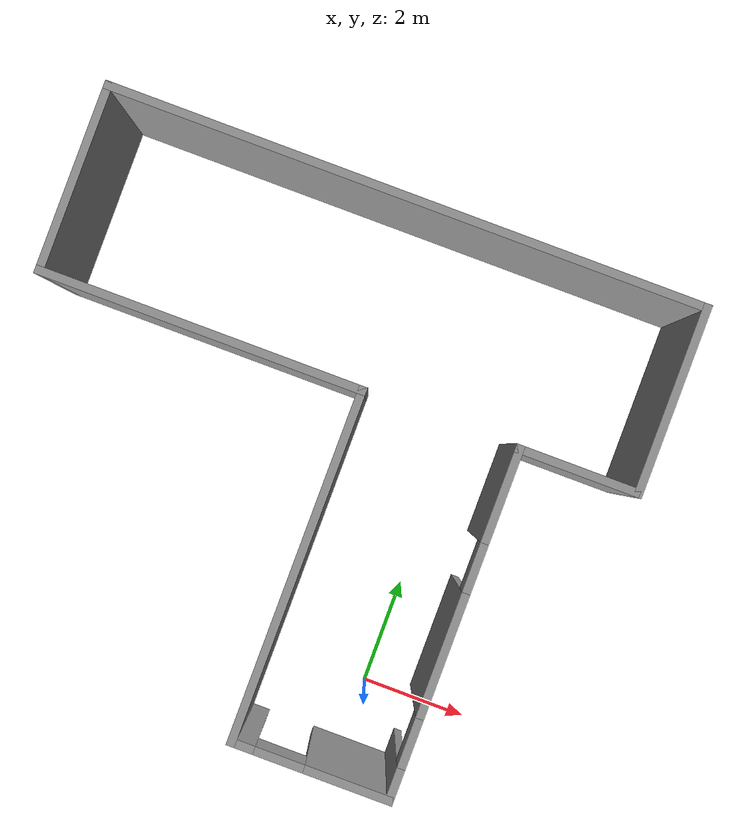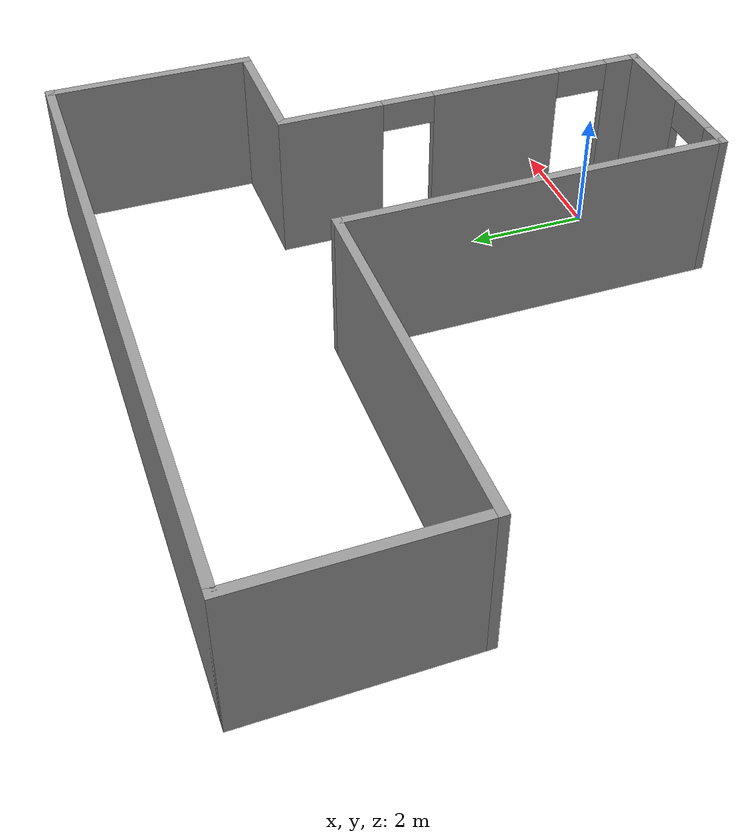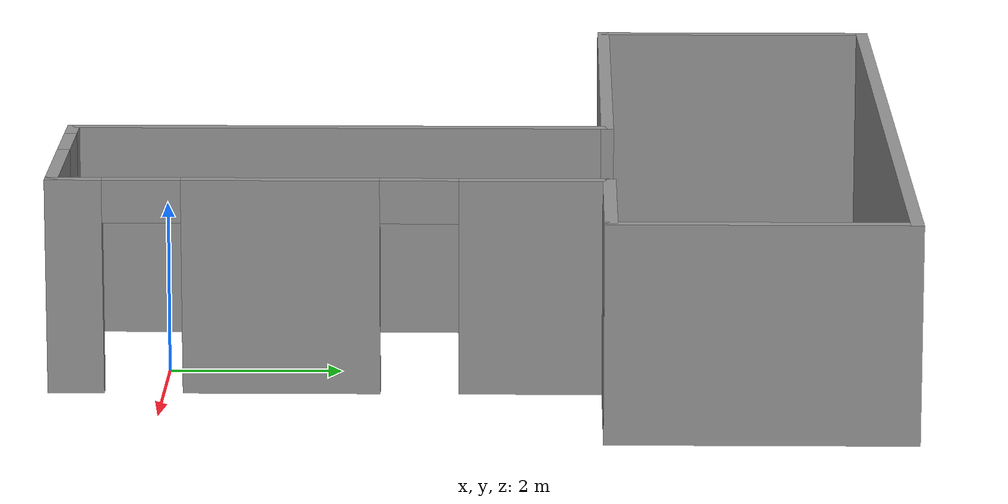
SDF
<?xml version='1.0'?>
<sdf version='1.7'>
  <model name='office_corridor'>
    <pose>-2.335 3.59 0 0 -0 0</pose>
    <link name='Wall_11'>
      <collision name='Wall_11_Collision'>
        <geometry>
          <box>
            <size>6 0.15 2.5</size>
          </box>
        </geometry>
        <pose>0 0 1.25 0 -0 0</pose>
      </collision>
      <visual name='Wall_11_Visual'>
        <pose>0 0 1.25 0 -0 0</pose>
        <geometry>
          <box>
            <size>6 0.15 2.5</size>
          </box>
        </geometry>
        <material>
          <script>
            <uri>file://media/materials/scripts/gazebo.material</uri>
            <name>Gazebo/Grey</name>
          </script>
          <ambient>1 1 1 1</ambient>
        </material>
        <meta>
          <layer>0</layer>
        </meta>
      </visual>
      <pose>-2.5 1.5 0 0 -0 3.14159</pose>
    </link>
    <link name='Wall_12'>
      <collision name='Wall_12_Collision'>
        <geometry>
          <box>
            <size>3.5 0.15 2.5</size>
          </box>
        </geometry>
        <pose>0 0 1.25 0 -0 0</pose>
      </collision>
      <visual name='Wall_12_Visual'>
        <pose>0 0 1.25 0 -0 0</pose>
        <geometry>
          <box>
            <size>3.5 0.15 2.5</size>
          </box>
        </geometry>
        <material>
          <script>
            <uri>file://media/materials/scripts/gazebo.material</uri>
            <name>Gazebo/Grey</name>
          </script>
          <ambient>1 1 1 1</ambient>
        </material>
        <meta>
          <layer>0</layer>
        </meta>
      </visual>
      <pose>-5.425 3.175 0 0 -0 1.5708</pose>
    </link>
    <link name='Wall_13'>
      <collision name='Wall_13_Collision'>
        <geometry>
          <box>
            <size>11 0.15 2.5</size>
          </box>
        </geometry>
        <pose>0 0 1.25 0 -0 0</pose>
      </collision>
      <visual name='Wall_13_Visual'>
        <pose>0 0 1.25 0 -0 0</pose>
        <geometry>
          <box>
            <size>11 0.15 2.5</size>
          </box>
        </geometry>
        <material>
          <script>
            <uri>file://media/materials/scripts/gazebo.material</uri>
            <name>Gazebo/Grey</name>
          </script>
          <ambient>1 1 1 1</ambient>
        </material>
        <meta>
          <layer>0</layer>
        </meta>
      </visual>
      <pose>0 4.85 0 0 -0 0</pose>
    </link>
    <link name='Wall_14'>
      <collision name='Wall_14_Collision'>
        <geometry>
          <box>
            <size>3.5 0.15 2.5</size>
          </box>
        </geometry>
        <pose>0 0 1.25 0 -0 0</pose>
      </collision>
      <visual name='Wall_14_Visual'>
        <pose>0 0 1.25 0 -0 0</pose>
        <geometry>
          <box>
            <size>3.5 0.15 2.5</size>
          </box>
        </geometry>
        <material>
          <script>
            <uri>file://media/materials/scripts/gazebo.material</uri>
            <name>Gazebo/Grey</name>
          </script>
          <ambient>1 1 1 1</ambient>
        </material>
        <meta>
          <layer>0</layer>
        </meta>
      </visual>
      <pose>5.425 3.175 0 0 -0 -1.5708</pose>
    </link>
    <link name='Wall_2'>
      <pose>1.85 -4.85 0 0 -0 0</pose>
      <visual name='Wall_2_Visual_0'>
        <pose>-1.25944 0 1.25 0 -0 0</pose>
        <geometry>
          <box>
            <size>0.481114 0.15 2.5</size>
          </box>
        </geometry>
        <material>
          <script>
            <uri>file://media/materials/scripts/gazebo.material</uri>
            <name>Gazebo/Grey</name>
          </script>
          <ambient>1 1 1 1</ambient>
        </material>
        <meta>
          <layer>0</layer>
        </meta>
      </visual>
      <collision name='Wall_2_Collision_0'>
        <geometry>
          <box>
            <size>0.481114 0.15 2.5</size>
          </box>
        </geometry>
        <pose>-1.25944 0 1.25 0 -0 0</pose>
      </collision>
      <visual name='Wall_2_Visual_1'>
        <pose>0.690557 0 1.25 0 -0 0</pose>
        <geometry>
          <box>
            <size>1.61889 0.15 2.5</size>
          </box>
        </geometry>
        <material>
          <script>
            <uri>file://media/materials/scripts/gazebo.material</uri>
            <name>Gazebo/Grey</name>
          </script>
          <ambient>1 1 1 1</ambient>
        </material>
        <meta>
          <layer>0</layer>
        </meta>
      </visual>
      <collision name='Wall_2_Collision_1'>
        <geometry>
          <box>
            <size>1.61889 0.15 2.5</size>
          </box>
        </geometry>
        <pose>0.690557 0 1.25 0 -0 0</pose>
      </collision>
      <visual name='Wall_2_Visual_2'>
        <pose>-0.568886 0 2.25 0 -0 0</pose>
        <geometry>
          <box>
            <size>0.9 0.15 0.5</size>
          </box>
        </geometry>
        <material>
          <script>
            <uri>file://media/materials/scripts/gazebo.material</uri>
            <name>Gazebo/Grey</name>
          </script>
          <ambient>1 1 1 1</ambient>
        </material>
        <meta>
          <layer>0</layer>
        </meta>
      </visual>
      <collision name='Wall_2_Collision_2'>
        <geometry>
          <box>
            <size>0.9 0.15 0.5</size>
          </box>
        </geometry>
        <pose>-0.568886 0 2.25 0 -0 0</pose>
      </collision>
    </link>
    <link name='Wall_5'>
      <collision name='Wall_5_Collision'>
        <geometry>
          <box>
            <size>6.5 0.15 2.5</size>
          </box>
        </geometry>
        <pose>0 0 1.25 0 -0 0</pose>
      </collision>
      <visual name='Wall_5_Visual'>
        <pose>0 0 1.25 0 -0 0</pose>
        <geometry>
          <box>
            <size>6.5 0.15 2.5</size>
          </box>
        </geometry>
        <material>
          <script>
            <uri>file://media/materials/scripts/gazebo.material</uri>
            <name>Gazebo/Grey</name>
          </script>
          <ambient>1 1 1 1</ambient>
        </material>
        <meta>
          <layer>0</layer>
        </meta>
      </visual>
      <pose>0.425 -1.675 0 0 -0 1.5708</pose>
    </link>
    <link name='Wall_7'>
      <pose>3.275 -1.675 0 0 -0 1.5708</pose>
      <visual name='Wall_7_Visual_0'>
        <pose>-2.92472 0 1.25 0 -0 0</pose>
        <geometry>
          <box>
            <size>0.650562 0.15 2.5</size>
          </box>
        </geometry>
        <material>
          <script>
            <uri>file://media/materials/scripts/gazebo.material</uri>
            <name>Gazebo/Grey</name>
          </script>
          <ambient>1 1 1 1</ambient>
        </material>
        <meta>
          <layer>0</layer>
        </meta>
      </visual>
      <collision name='Wall_7_Collision_0'>
        <geometry>
          <box>
            <size>0.650562 0.15 2.5</size>
          </box>
        </geometry>
        <pose>-2.92472 0 1.25 0 -0 0</pose>
      </collision>
      <visual name='Wall_7_Visual_1'>
        <pose>-0.567607 0 1.25 0 -0 0</pose>
        <geometry>
          <box>
            <size>2.26366 0.15 2.5</size>
          </box>
        </geometry>
        <material>
          <script>
            <uri>file://media/materials/scripts/gazebo.material</uri>
            <name>Gazebo/Grey</name>
          </script>
          <ambient>1 1 1 1</ambient>
        </material>
        <meta>
          <layer>0</layer>
        </meta>
      </visual>
      <collision name='Wall_7_Collision_1'>
        <geometry>
          <box>
            <size>2.26366 0.15 2.5</size>
          </box>
        </geometry>
        <pose>-0.567607 0 1.25 0 -0 0</pose>
      </collision>
      <visual name='Wall_7_Visual_2'>
        <pose>2.35711 0 1.25 0 -0 0</pose>
        <geometry>
          <box>
            <size>1.78577 0.15 2.5</size>
          </box>
        </geometry>
        <material>
          <script>
            <uri>file://media/materials/scripts/gazebo.material</uri>
            <name>Gazebo/Grey</name>
          </script>
          <ambient>1 1 1 1</ambient>
        </material>
        <meta>
          <layer>0</layer>
        </meta>
      </visual>
      <collision name='Wall_7_Collision_2'>
        <geometry>
          <box>
            <size>1.78577 0.15 2.5</size>
          </box>
        </geometry>
        <pose>2.35711 0 1.25 0 -0 0</pose>
      </collision>
      <visual name='Wall_7_Visual_3'>
        <pose>-2.14944 0 2.25 0 -0 0</pose>
        <geometry>
          <box>
            <size>0.9 0.15 0.5</size>
          </box>
        </geometry>
        <material>
          <script>
            <uri>file://media/materials/scripts/gazebo.material</uri>
            <name>Gazebo/Grey</name>
          </script>
          <ambient>1 1 1 1</ambient>
        </material>
        <meta>
          <layer>0</layer>
        </meta>
      </visual>
      <collision name='Wall_7_Collision_3'>
        <geometry>
          <box>
            <size>0.9 0.15 0.5</size>
          </box>
        </geometry>
        <pose>-2.14944 0 2.25 0 -0 0</pose>
      </collision>
      <visual name='Wall_7_Visual_4'>
        <pose>1.01422 0 2.25 0 -0 0</pose>
        <geometry>
          <box>
            <size>0.9 0.15 0.5</size>
          </box>
        </geometry>
        <material>
          <script>
            <uri>file://media/materials/scripts/gazebo.material</uri>
            <name>Gazebo/Grey</name>
          </script>
          <ambient>1 1 1 1</ambient>
        </material>
        <meta>
          <layer>0</layer>
        </meta>
      </visual>
      <collision name='Wall_7_Collision_4'>
        <geometry>
          <box>
            <size>0.9 0.15 0.5</size>
          </box>
        </geometry>
        <pose>1.01422 0 2.25 0 -0 0</pose>
      </collision>
    </link>
    <link name='Wall_8'>
      <collision name='Wall_8_Collision'>
        <geometry>
          <box>
            <size>2.25 0.15 2.5</size>
          </box>
        </geometry>
        <pose>0 0 1.25 0 -0 0</pose>
      </collision>
      <visual name='Wall_8_Visual'>
        <pose>0 0 1.25 0 -0 0</pose>
        <geometry>
          <box>
            <size>2.25 0.15 2.5</size>
          </box>
        </geometry>
        <material>
          <script>
            <uri>file://media/materials/scripts/gazebo.material</uri>
            <name>Gazebo/Grey</name>
          </script>
          <ambient>1 1 1 1</ambient>
        </material>
        <meta>
          <layer>0</layer>
        </meta>
      </visual>
      <pose>4.325 1.5 0 0 -0 0</pose>
    </link>
    <static>1</static>
  </model>
</sdf>
